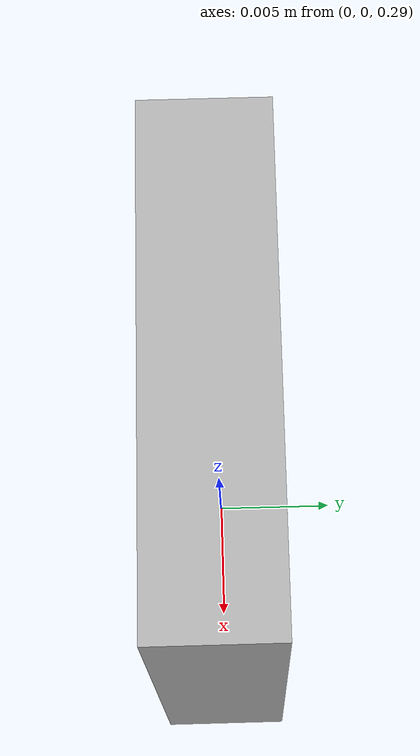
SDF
<?xml version="1.0" ?>
<sdf version="1.4">
  <model name="object">
    <link name="link">

      <inertial>
        <pose>0 0 0.3 0 0 0</pose>
        <mass>0.1</mass>
        <inertia>
          <ixx>0.00058</ixx>
          <ixy>0</ixy>
          <ixz>0</ixz>
          <iyy>0.00058</iyy>
          <iyz>0</iyz>
          <izz>0.00019</izz>
        </inertia>
      </inertial>

      <collision name="object">
        <pose>0 0 0.3 0 0 0</pose>
        <geometry>
          <box>
            <size>0.02 0.01 0.02</size>
          </box>
        </geometry>

        <surface>
          <friction>
            <ode>
              <mu>1.0</mu>
              <mu2>1.0</mu2>
            </ode>
          </friction>
          <contact>
            <ode>
              <kp>10000000.0</kp>
              <kd>1.0</kd>
              <min_depth>0.001</min_depth>
              <max_vel>0.01</max_vel>
            </ode>
          </contact>
        </surface>

      </collision>

      <visual name="visual1">
        <pose>0 0 0.3 0 0 0</pose>
        <geometry>
          <box>
            <size>0.02 0.005 0.02</size>
          </box>
        </geometry>

      </visual>

      </link>

  </model>
</sdf>
